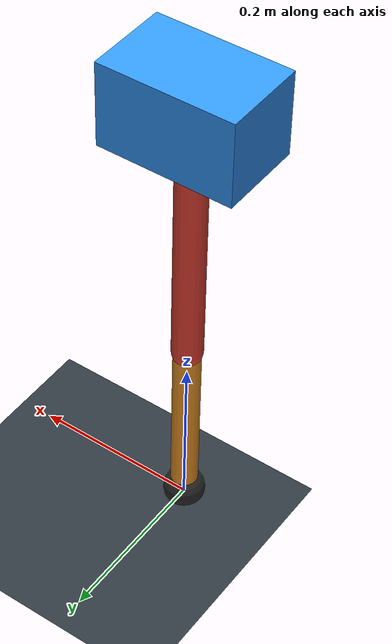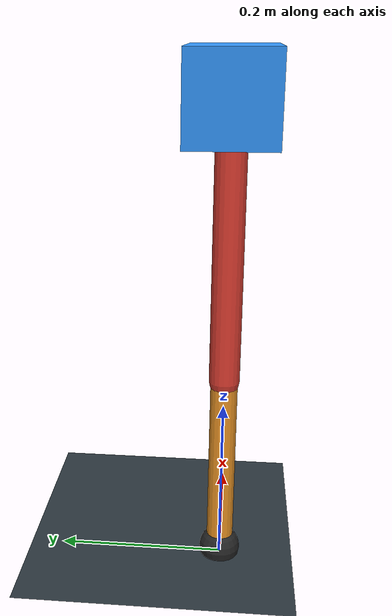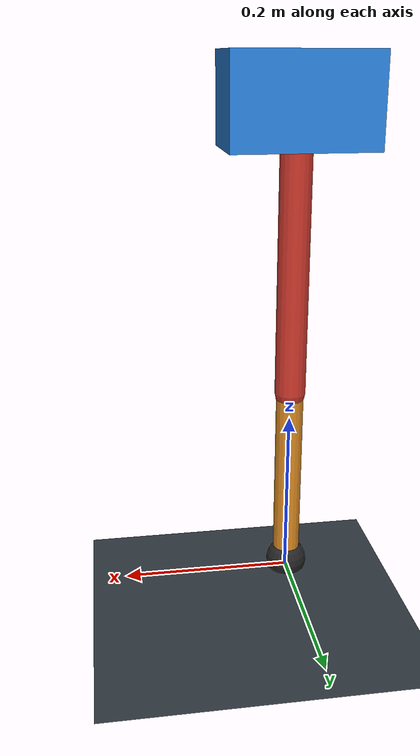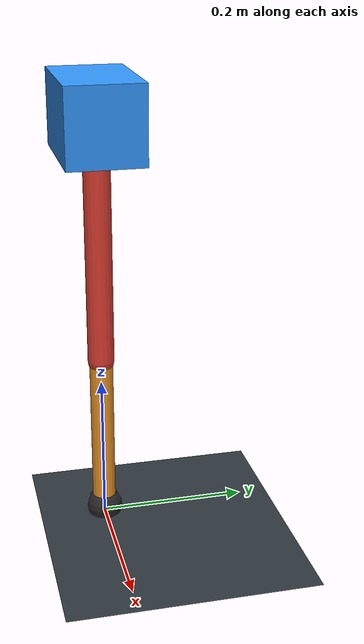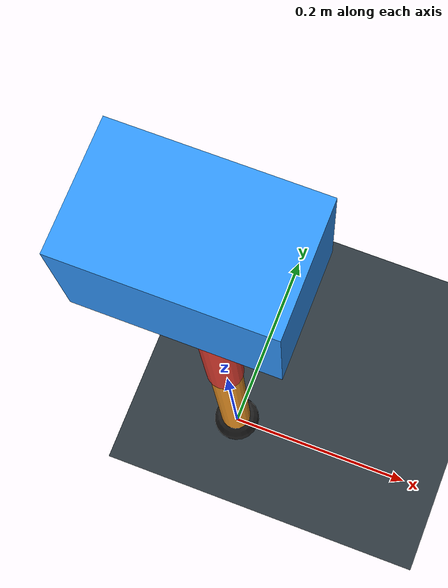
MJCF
<mujoco model="single_axis_two_bar">
  <compiler angle="radian" inertiafromgeom="true"/>
  <option timestep="0.001" integrator="implicitfast" gravity="0 0 -9.81"/>
  <default>
    <joint damping="0.08"/>
    <geom friction="1.2 0.01 0.0001" condim="3"/>
  </default>
  <worldbody>
    <geom name="floor" type="plane" size="5 5 0.1" rgba="0.18 0.22 0.25 1"/>
    <body name="carriage" pos="0 0 0.5625404647060094">
      <joint name="pole_slide" type="slide" axis="0 0 1"/>
      <geom name="payload" type="box" size="0.08 0.05 0.05" mass="3.1423158528751154" rgba="0.2 0.6 1 1"/>
      <body name="thigh" pos="0 0 0">
        <joint name="hip" type="hinge" axis="0 1 0"/>
        <geom name="thigh_link" type="capsule" fromto="0 0 0 0 0 -0.32974045110390404" size="0.018" mass="0.23494442854717001" rgba="0.9 0.25 0.2 1"/>
        <body name="shank" pos="0 0 -0.32974045110390404">
          <joint name="knee" type="hinge" axis="0 1 0"/>
          <geom name="shank_link" type="capsule" fromto="0 0 0 0 0 -0.22442497642806436" size="0.016" mass="0.15990576121941685" rgba="0.95 0.6 0.15 1"/>
          <geom name="foot" type="sphere" pos="0 0 -0.22442497642806436" size="0.025" mass="0.03" rgba="0.15 0.15 0.15 1"/>
          <site name="toe" pos="0 0 -0.22442497642806436" size="0.008"/>
        </body>
      </body>
    </body>
  </worldbody>
  <actuator>
    <motor name="hip_motor" joint="hip" ctrlrange="-33.21583787211614 33.21583787211614"/>
    <motor name="knee_motor" joint="knee" ctrlrange="-143.06942203097995 143.06942203097995"/>
  </actuator>
</mujoco>
